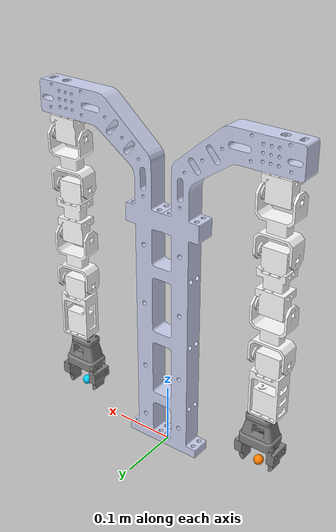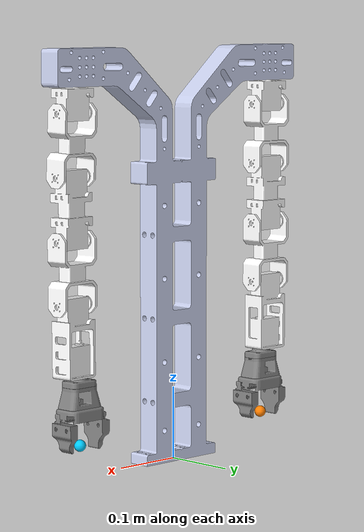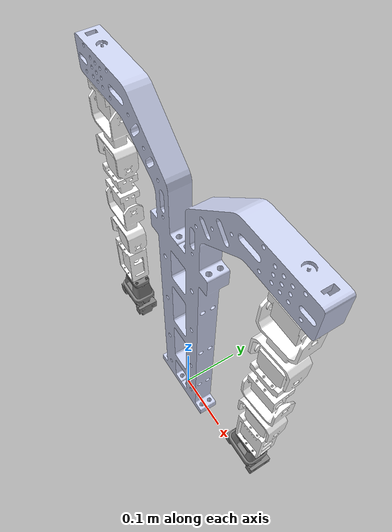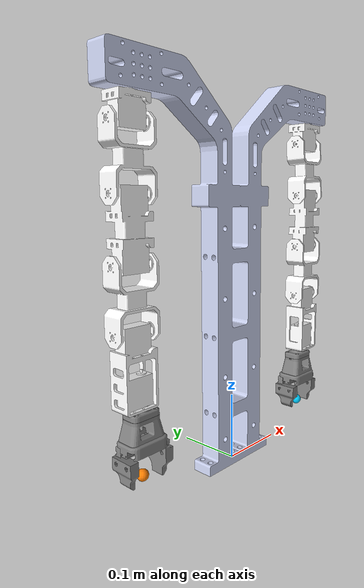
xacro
<?xml version="1.0"?>
<robot xmlns:xacro="http://www.ros.org/wiki/xacro" name="dexter_arm">
    <!-- Include the URDF from dexter_arm_description package -->
    <!-- MoveIt will load this to get the robot geometry -->
    <xacro:include filename="$(find dexter_arm_description)/urdf/dexter_arm.urdf.xacro" />
</robot>

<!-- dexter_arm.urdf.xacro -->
<robot xmlns:xacro="http://www.ros.org/wiki/xacro" name="dexter_arm">

    <!-- Pure robot geometry - NO ros2_control here -->
    <!-- ros2_control is added by overlay xacros (gazebo/hardware) -->

    <!-- Add dummy world link and fixed base_joint so base_link is not the URDF root -->
    <link name="world" />
    <joint name="base_joint" type="fixed">
        <parent link="world" />
        <child link="base_link" />
        <origin rpy="0 0 0" xyz="0 0 0" />
    </joint>

    <!-- Base Link -->
    <link name="base_link">
        <inertial>
            <origin xyz="1.11022302462516E-16 -1.31752248000438E-15 0.341229394008098" rpy="0 0 0" />
            <mass value="1.57034512332414" />
            <inertia ixx="0.014156986279529" ixy="-2.66546726272844E-17" ixz="8.0299293210262E-19"
                     iyy="0.0167394307342646" iyz="5.42683623685501E-17" izz="0.00265284502209648" />
        </inertial>
        <visual>
            <origin xyz="0 0 0" rpy="0 0 0" />
            <geometry>
                <mesh filename="package://dexter_arm_description/meshes/visual/base_link.STL" />
            </geometry>
            <material name="">
                <color rgba="0.792156862745098 0.819607843137255 0.933333333333333 1" />
            </material>
        </visual>
        <collision>
            <origin xyz="0 0 0" rpy="0 0 0" />
            <geometry>
                <mesh filename="package://dexter_arm_description/meshes/collision/base_link.STL" />
            </geometry>
        </collision>
    </link>

    <!-- LEFT ARM -->
    <!-- Link l1l -->
    <link name="l1l">
        <inertial>
            <origin xyz="-2.06768076424502E-05 2.03830008427275E-15 0.0236812970530658" rpy="0 0 0" />
            <mass value="0.0412610106656879" />
            <inertia ixx="6.45452263055135E-06" ixy="-6.35156631471509E-20" ixz="5.67173895654462E-10"
                     iyy="1.08529418395194E-05" iyz="1.55844839681327E-20" izz="8.35698735982534E-06" />
        </inertial>
        <visual>
            <origin xyz="0 0 0" rpy="0 0 0" />
            <geometry>
                <mesh filename="package://dexter_arm_description/meshes/visual/l1l.STL" />
            </geometry>
            <material name="">
                <color rgba="1 1 1 1" />
            </material>
        </visual>
        <collision>
            <origin xyz="0 0 0" rpy="0 0 0" />
            <geometry>
                <mesh filename="package://dexter_arm_description/meshes/collision/l1l.STL" />
            </geometry>
        </collision>
    </link>

    <joint name="j1l" type="revolute">
        <origin xyz="-0.185 0 0.4755" rpy="0 0 0" />
        <parent link="base_link" />
        <child link="l1l" />
        <axis xyz="0 0 -1" />
        <limit lower="0" upper="3.14" effort="343.0" velocity="5" />
    </joint>

    <!-- Link l2l -->
    <link name="l2l">
        <inertial>
            <origin xyz="0.0420000000000009 3.10255293678452E-14 -2.1094237467878E-15" rpy="0 0 0" />
            <mass value="0.0412639771770677" />
            <inertia ixx="2.03861872352237E-05" ixy="1.83850917637208E-20" ixz="1.29909905427445E-20"
                     iyy="2.30212674355657E-05" iyz="-5.99177000134609E-22" izz="8.54833447441493E-06" />
        </inertial>
        <visual>
            <origin xyz="0 0 0" rpy="0 0 0" />
            <geometry>
                <mesh filename="package://dexter_arm_description/meshes/visual/l2l.STL" />
            </geometry>
            <material name="">
                <color rgba="1 1 1 1" />
            </material>
        </visual>
        <collision>
            <origin xyz="0 0 0" rpy="0 0 0" />
            <geometry>
                <mesh filename="package://dexter_arm_description/meshes/collision/l2l.STL" />
            </geometry>
        </collision>
    </link>

    <joint name="j2l" type="revolute">
        <origin xyz="0 0 0.01" rpy="0 1.5707963267949 0" />
        <parent link="l1l" />
        <child link="l2l" />
        <axis xyz="0 0 1" />
        <limit lower="-1.57" upper="1.57" effort="343.0" velocity="5" />
    </joint>

    <!-- Link l3l -->
    <link name="l3l">
        <inertial>
            <origin xyz="0.0425000000000011 -3.91231348532972E-10 -2.05391259555654E-15" rpy="0 0 0" />
            <mass value="0.089584582698146" />
            <inertia ixx="1.79494942674491E-05" ixy="-6.24250401827857E-21" ixz="-1.13434779133657E-09"
                     iyy="2.28721177257845E-05" iyz="-4.51664802349514E-21" izz="1.35465501240485E-05" />
        </inertial>
        <visual>
            <origin xyz="0 0 0" rpy="0 0 0" />
            <geometry>
                <mesh filename="package://dexter_arm_description/meshes/visual/l3l.STL" />
            </geometry>
            <material name="">
                <color rgba="1 1 1 1" />
            </material>
        </visual>
        <collision>
            <origin xyz="0 0 0" rpy="0 0 0" />
            <geometry>
                <mesh filename="package://dexter_arm_description/meshes/collision/l3l.STL" />
            </geometry>
        </collision>
    </link>

    <joint name="j3l" type="revolute">
        <origin xyz="0.0839999999999997 0 0" rpy="0 0 0" />
        <parent link="l2l" />
        <child link="l3l" />
        <axis xyz="0 0 1" />
        <limit lower="-1.57" upper="1.57" effort="343.0" velocity="5" />
    </joint>

    <!-- Link l4l -->
    <link name="l4l">
        <inertial>
            <origin xyz="0.042000000005591 -9.7518096834389E-07 -1.55431223447522E-15" rpy="0 0 0" />
            <mass value="0.041263977177068" />
            <inertia ixx="2.03861872352239E-05" ixy="-2.09421927761261E-21" ixz="-3.48729676766912E-20"
                     iyy="2.3021267435566E-05" iyz="-4.08634235879589E-21" izz="8.54833447441504E-06" />
        </inertial>
        <visual>
            <origin xyz="0 0 0" rpy="0 0 0" />
            <geometry>
                <mesh filename="package://dexter_arm_description/meshes/visual/l4l.STL" />
            </geometry>
            <material name="">
                <color rgba="1 1 1 1" />
            </material>
        </visual>
        <collision>
            <origin xyz="0 0 0" rpy="0 0 0" />
            <geometry>
                <mesh filename="package://dexter_arm_description/meshes/collision/l4l.STL" />
            </geometry>
        </collision>
    </link>

    <joint name="j4l" type="revolute">
        <origin xyz="0.0849999999944108 0 0" rpy="0 0 0" />
        <parent link="l3l" />
        <child link="l4l" />
        <axis xyz="0 0 1" />
        <limit lower="-1.57" upper="1.57" effort="147.0" velocity="5" />
    </joint>

    <!-- Link l5l -->
    <link name="l5l">
        <inertial>
            <origin xyz="0.04514989228191 -0.00246541434401295 0.000519380260867508" rpy="0 0 0" />
            <mass value="0.0877350527785506" />
            <inertia ixx="2.15592269641528E-05" ixy="1.08634480270297E-12" ixz="6.61837513500229E-07"
                     iyy="4.21271739710682E-05" iyz="-2.81945782664923E-12" izz="2.9808063539004E-05" />
        </inertial>
        <visual>
            <origin xyz="0 0 0" rpy="0 0 0" />
            <geometry>
                <mesh filename="package://dexter_arm_description/meshes/visual/l5l.STL" />
            </geometry>
            <material name="">
                <color rgba="1 1 1 1" />
            </material>
        </visual>
        <collision>
            <origin xyz="0 0 0" rpy="0 0 0" />
            <geometry>
                <mesh filename="package://dexter_arm_description/meshes/collision/l5l.STL" />
            </geometry>
        </collision>
    </link>

    <joint name="j5l" type="revolute">
        <origin xyz="0.083965824229058 0.0023959051595066 0" rpy="0 0 0" />
        <parent link="l4l" />
        <child link="l5l" />
        <axis xyz="0 0 1" />
        <limit lower="-1.57" upper="1.57" effort="147.0" velocity="5" />
    </joint>

    <!-- LEFT GRIPPER BASE - Using new gripper mesh -->
    <link name="l6l">
        <inertial>
            <origin xyz="0 0 0.02" rpy="0 0 0" />
            <mass value="0.05" />
            <inertia ixx="0.00001" ixy="0" ixz="0" iyy="0.00001" iyz="0" izz="0.00001" />
        </inertial>
        <visual>
            <origin xyz="0 0 0" rpy="0 0 0" />
            <geometry>
                <mesh filename="package://dexter_arm_description/meshes/base.stl" scale="0.001 0.001 0.001"/>
            </geometry>
            <material name="">
                <color rgba="0.5 0.5 0.5 1" />
            </material>
        </visual>
        <collision>
            <origin xyz="0 0 0" rpy="0 0 0" />
            <geometry>
                <mesh filename="package://dexter_arm_description/meshes/base.stl" scale="0.001 0.001 0.001"/>
            </geometry>
        </collision>
    </link>

    <joint name="j6l" type="revolute">
        <origin xyz="0.110 -0.002 0.010" rpy="3.14159 1.57 0" />
        <parent link="l5l" />
        <child link="l6l" />
        <axis xyz="0 0 1" />
        <limit lower="-1.5708" upper="1.5708" effort="0.5" velocity="1.0" />
    </joint>

    <!-- LEFT GRIPPER - Base1 Layer (fixed below base) -->
    <link name="l6l_base1">
        <inertial>
            <origin xyz="0 0 0.01" rpy="0 0 0" />
            <mass value="0.03" />
            <inertia ixx="0.00001" ixy="0" ixz="0" iyy="0.00001" iyz="0" izz="0.00001" />
        </inertial>
        <visual>
            <origin xyz="0 0 0" rpy="0 0 0" />
            <geometry>
                <mesh filename="package://dexter_arm_description/meshes/base1.stl" scale="0.001 0.001 0.001"/>
            </geometry>
            <material name="">
                <color rgba="0.5 0.5 0.5 1" />
            </material>
        </visual>
        <collision>
            <origin xyz="0 0 0" rpy="0 0 0" />
            <geometry>
                <mesh filename="package://dexter_arm_description/meshes/base1.stl" scale="0.001 0.001 0.001"/>
            </geometry>
        </collision>
    </link>

    <joint name="j6l_base1_fixed" type="fixed">
        <origin xyz="-0.021 0.015 0.004" rpy="3.142 0 0" />
        <parent link="l6l" />
        <child link="l6l_base1" />
    </joint>

    <!-- LEFT GRIPPER - Rail Layer (fixed to base1) -->
    <link name="l6l_rail">
        <inertial>
            <origin xyz="0 0 0.01" rpy="0 0 0" />
            <mass value="0.02" />
            <inertia ixx="0.00001" ixy="0" ixz="0" iyy="0.00001" iyz="0" izz="0.00001" />
        </inertial>
        <visual>
            <origin xyz="0 0 0" rpy="0 0 0" />
            <geometry>
                <mesh filename="package://dexter_arm_description/meshes/rail.stl" scale="0.001 0.001 0.001"/>
            </geometry>
            <material name="">
                <color rgba="0.5 0.5 0.5 1" />
            </material>
        </visual>
        <collision>
            <origin xyz="0 0 0" rpy="0 0 0" />
            <geometry>
                <mesh filename="package://dexter_arm_description/meshes/rail.stl" scale="0.001 0.001 0.001"/>
            </geometry>
        </collision>
    </link>

    <joint name="j6l_rail_fixed" type="fixed">
        <origin xyz="-0.009 0.034 0.036" rpy="1.57 0 0" />
        <parent link="l6l_base1" />
        <child link="l6l_rail" />
    </joint>

    <!-- LEFT GRIPPER - Finger 1 Slider -->
    <link name="l6l_finger_slider">
        <inertial>
            <mass value="0.001" />
            <inertia ixx="0.000001" ixy="0" ixz="0" iyy="0.000001" iyz="0" izz="0.000001" />
        </inertial>
    </link>

    <joint name="j7l1" type="prismatic">
        <origin xyz="0.000 0.022 0.021" rpy="0 -1.572 0" />
        <parent link="l6l_rail" />
        <child link="l6l_finger_slider" />
        <axis xyz="0 0 1" />
        <limit lower="-0.022" upper="0.0" effort="1.0" velocity="0.1" />
    </joint>

    <!-- LEFT GRIPPER - Finger (actual mesh) -->
    <link name="l6l_finger">
        <inertial>
            <origin xyz="0 0 0.015" rpy="0 0 0" />
            <mass value="0.01" />
            <inertia ixx="0.000001" ixy="0" ixz="0" iyy="0.000001" iyz="0" izz="0.000001" />
        </inertial>
        <visual>
            <origin xyz="0 0 0" rpy="0 0 0" />
            <geometry>
                <mesh filename="package://dexter_arm_description/meshes/finger.stl" scale="0.001 0.001 0.001"/>
            </geometry>
            <material name="">
                <color rgba="0.5 0.5 0.5 1" />
            </material>
        </visual>
        <collision>
            <origin xyz="0 0 0" rpy="0 0 0" />
            <geometry>
                <mesh filename="package://dexter_arm_description/meshes/finger.stl" scale="0.001 0.001 0.001"/>
            </geometry>
        </collision>
    </link>

    <joint name="j6l_finger_fixed" type="fixed">
        <origin xyz="0 0 0" rpy="0 0 0" />
        <parent link="l6l_finger_slider" />
        <child link="l6l_finger" />
    </joint>

    <!-- LEFT GRIPPER - Second Finger with Mimic Slider -->
    <link name="l6l_finger2_slider">
        <inertial>
            <mass value="0.001" />
            <inertia ixx="0.000001" ixy="0" ixz="0" iyy="0.000001" iyz="0" izz="0.000001" />
        </inertial>
    </link>

    <joint name="j7l2" type="prismatic">
        <origin xyz="0.060 0.022 0.021" rpy="0 1.572 0" />
        <parent link="l6l_rail" />
        <child link="l6l_finger2_slider" />
        <axis xyz="0 0 1" />
        <limit lower="-0.022" upper="0.0" effort="1.0" velocity="0.1" />
    </joint>

    <!-- LEFT GRIPPER - Second Finger (actual mesh) -->
    <link name="l6l_finger2">
        <inertial>
            <origin xyz="0 0 0.015" rpy="0 0 0" />
            <mass value="0.01" />
            <inertia ixx="0.000001" ixy="0" ixz="0" iyy="0.000001" iyz="0" izz="0.000001" />
        </inertial>
        <visual>
            <origin xyz="0 0 0" rpy="0 0 0" />
            <geometry>
                <mesh filename="package://dexter_arm_description/meshes/finger.stl" scale="0.001 0.001 0.001"/>
            </geometry>
            <material name="">
                <color rgba="0.5 0.5 0.5 1" />
            </material>
        </visual>
        <collision>
            <origin xyz="0 0 0" rpy="0 0 0" />
            <geometry>
                <mesh filename="package://dexter_arm_description/meshes/finger.stl" scale="0.001 0.001 0.001"/>
            </geometry>
        </collision>
    </link>

    <joint name="j6l_finger2_fixed" type="fixed">
        <origin xyz="0 0 0" rpy="0 0 0" />
        <parent link="l6l_finger2_slider" />
        <child link="l6l_finger2" />
    </joint>

    <!-- LEFT ARM - Tool Center Point (TCP) -->
    <link name="tool0_left">
        <inertial>
            <origin xyz="0 0 0" rpy="0 0 0" />
            <mass value="0.001" />
            <inertia ixx="0.000001" ixy="0" ixz="0" iyy="0.000001" iyz="0" izz="0.000001" />
        </inertial>
        <visual>
            <origin xyz="0 0 0" rpy="0 0 0" />
            <geometry>
                <sphere radius="0.008" />
            </geometry>
            <material name="tcp_orange">
                <color rgba="1.0 0.5 0.0 1.0" />
            </material>
        </visual>
    </link>

    <joint name="tool0_left_fixed_joint" type="fixed">
        <origin xyz="0 0 -0.08" rpy="0 0 0" />
        <parent link="l6l" />
        <child link="tool0_left" />
    </joint>

    <!-- RIGHT ARM -->
    <!-- Link l1r -->
    <link name="l1r">
        <inertial>
            <origin xyz="2.06768076422351E-05 2.42861286636753E-17 -0.0236812970530664" rpy="0 0 0" />
            <mass value="0.0412610106656879" />
            <inertia ixx="6.45452263055137E-06" ixy="1.58739512138535E-22" ixz="5.67173895648283E-10"
                     iyy="1.08529418395194E-05" iyz="2.01570916178023E-20" izz="8.35698735982533E-06" />
        </inertial>
        <visual>
            <origin xyz="0 0 0" rpy="0 0 0" />
            <geometry>
                <mesh filename="package://dexter_arm_description/meshes/visual/l1r.STL" />
            </geometry>
            <material name="">
                <color rgba="1 1 1 1" />
            </material>
        </visual>
        <collision>
            <origin xyz="0 0 0" rpy="0 0 0" />
            <geometry>
                <mesh filename="package://dexter_arm_description/meshes/collision/l1r.STL" />
            </geometry>
        </collision>
    </link>

    <joint name="j1r" type="revolute">
        <origin xyz="0.185 0 0.4755" rpy="3.14159265358979 0 0" />
        <parent link="base_link" />
        <child link="l1r" />
        <axis xyz="0 0 1" />
        <limit lower="0" upper="3.14" effort="343.0" velocity="5" />
    </joint>

    <!-- Link l2r -->
    <link name="l2r">
        <inertial>
            <origin xyz="0.0419634783926228 0.00174598253548033 -0.000134261601576029" rpy="0 0 0" />
            <mass value="0.0412639771770678" />
            <inertia ixx="2.03907679743811E-05" ixy="-1.0944769820727E-07" ixz="8.41624870313865E-09"
                     iyy="2.29316351108135E-05" iyz="-1.10603911559014E-06" izz="8.63338606000998E-06" />
        </inertial>
        <visual>
            <origin xyz="0 0 0" rpy="0 0 0" />
            <geometry>
                <mesh filename="package://dexter_arm_description/meshes/visual/l2r.STL" />
            </geometry>
            <material name="">
                <color rgba="1 1 1 1" />
            </material>
        </visual>
        <collision>
            <origin xyz="0 0 0" rpy="0 0 0" />
            <geometry>
                <mesh filename="package://dexter_arm_description/meshes/collision/l2r.STL" />
            </geometry>
        </collision>
    </link>

    <joint name="j2r" type="revolute">
        <origin xyz="0 0 -0.01" rpy="0 -1.5707963267949 0" />
        <parent link="l1r" />
        <child link="l2r" />
        <axis xyz="0 0 1" />
        <limit lower="-1.57" upper="1.57" effort="343.0" velocity="5" />
    </joint>

    <!-- Link l3r -->
    <link name="l3r">
        <inertial>
            <origin xyz="0.0423825306568636 0.00349075846009133 -0.000268452021535304" rpy="0 0 0" />
            <mass value="0.0895845826981461" />
            <inertia ixx="1.79494942674491E-05" ixy="-8.69786470348686E-11" ixz="-1.13100823456928E-09"
                     iyy="2.28172890053359E-05" iyz="-7.12953540193635E-07" izz="1.36013788444972E-05" />
        </inertial>
        <visual>
            <origin xyz="0 0 0" rpy="0 0 0" />
            <geometry>
                <mesh filename="package://dexter_arm_description/meshes/visual/l3r.STL" />
            </geometry>
            <material name="">
                <color rgba="1 1 1 1" />
            </material>
        </visual>
        <collision>
            <origin xyz="0 0 0" rpy="0 0 0" />
            <geometry>
                <mesh filename="package://dexter_arm_description/meshes/collision/l3r.STL" />
            </geometry>
        </collision>
    </link>

    <joint name="j3r" type="revolute">
        <origin xyz="0.0839999999999999 0 0" rpy="1.23048953327578E-05 -0.00097269686955413 -0.012649615042804" />
        <parent link="l2r" />
        <child link="l3r" />
        <axis xyz="0.000972696716171088 1.23048895120007E-05 0.999999526854732" />
        <limit lower="-1.57" upper="1.57" effort="343.0" velocity="5" />
    </joint>

    <!-- Link l4r -->
    <link name="l4r">
        <inertial>
            <origin xyz="0.0418892012683609 0.00253473472586697 -0.000194930320374417" rpy="0 0 0" />
            <mass value="0.0412639771770679" />
            <inertia ixx="2.03862085728145E-05" ixy="-7.47631149425635E-09" ixz="5.74955547272901E-10"
                     iyy="2.29361540950671E-05" iyz="-1.10647566127816E-06" izz="8.63342647732305E-06" />
        </inertial>
        <visual>
            <origin xyz="0 0 0" rpy="0 0 0" />
            <geometry>
                <mesh filename="package://dexter_arm_description/meshes/visual/l4r.STL" />
            </geometry>
            <material name="">
                <color rgba="1 1 1 1" />
            </material>
        </visual>
        <collision>
            <origin xyz="0 0 0" rpy="0 0 0" />
            <geometry>
                <mesh filename="package://dexter_arm_description/meshes/collision/l4r.STL" />
            </geometry>
        </collision>
    </link>

    <joint name="j4r" type="revolute">
        <origin xyz="0.0849931593404333 0.00107518760394861 -8.26858361745036E-05" rpy="0 0 0" />
        <parent link="l3r" />
        <child link="l4r" />
        <axis xyz="0.000972696716170201 1.23048895400181E-05 0.999999526854732" />
        <limit lower="-1.57" upper="1.57" effort="147.0" velocity="5" />
    </joint>

    <!-- Link l5r -->
    <link name="l5r">
        <inertial>
            <origin xyz="0.0450157419489307 0.00156312182677027 0.000400707468873628" rpy="0 0 0" />
            <mass value="0.0877350517033452" />
            <inertia ixx="2.15592267291585E-05" ixy="5.07473450979785E-08" ixz="6.59889552919724E-07"
                     iyy="4.2054747689702E-05" iyz="-9.41789114948995E-07" izz="2.98804874954609E-05" />
        </inertial>
        <visual>
            <origin xyz="0 0 0" rpy="0 0 0" />
            <geometry>
                <mesh filename="package://dexter_arm_description/meshes/visual/l5r.STL" />
            </geometry>
            <material name="">
                <color rgba="1 1 1 1" />
            </material>
        </visual>
        <collision>
            <origin xyz="0 0 0" rpy="0 0 0" />
            <geometry>
                <mesh filename="package://dexter_arm_description/meshes/collision/l5r.STL" />
            </geometry>
        </collision>
    </link>

    <joint name="j5r" type="revolute">
        <origin xyz="0.0839932398190739 0.00106253831537445 -8.1713061631225E-05" rpy="0 0.000203415098013994 0.00264506784365567" />
        <parent link="l4r" />
        <child link="l5r" />
        <axis xyz="0.000769310840231528 0 0.999999704050751" />
        <limit lower="-1.57" upper="1.57" effort="147.0" velocity="5" />
    </joint>

    <!-- RIGHT GRIPPER BASE - Using new gripper mesh -->
    <link name="l6r">
        <inertial>
            <origin xyz="0 0 0.02" rpy="0 0 0" />
            <mass value="0.05" />
            <inertia ixx="0.00001" ixy="0" ixz="0" iyy="0.00001" iyz="0" izz="0.00001" />
        </inertial>
        <visual>
            <origin xyz="0 0 0" rpy="0 0 0" />
            <geometry>
                <mesh filename="package://dexter_arm_description/meshes/base.stl" scale="0.001 0.001 0.001"/>
            </geometry>
            <material name="">
                <color rgba="0.5 0.5 0.5 1" />
            </material>
        </visual>
        <collision>
            <origin xyz="0 0 0" rpy="0 0 0" />
            <geometry>
                <mesh filename="package://dexter_arm_description/meshes/base.stl" scale="0.001 0.001 0.001"/>
            </geometry>
        </collision>
    </link>

    <joint name="j6r" type="revolute">
        <origin xyz="0.110 0.002 0.010" rpy="3.14159 1.57 0" />
        <parent link="l5r" />
        <child link="l6r" />
        <axis xyz="0 0 1" />
        <limit lower="-1.5708" upper="1.5708" effort="0.5" velocity="1.0" />
    </joint>

    <!-- RIGHT GRIPPER - Base1 Layer (fixed below base) -->
    <link name="l6r_base1">
        <inertial>
            <origin xyz="0 0 0.01" rpy="0 0 0" />
            <mass value="0.03" />
            <inertia ixx="0.00001" ixy="0" ixz="0" iyy="0.00001" iyz="0" izz="0.00001" />
        </inertial>
        <visual>
            <origin xyz="0 0 0" rpy="0 0 0" />
            <geometry>
                <mesh filename="package://dexter_arm_description/meshes/base1.stl" scale="0.001 0.001 0.001"/>
            </geometry>
            <material name="">
                <color rgba="0.5 0.5 0.5 1" />
            </material>
        </visual>
        <collision>
            <origin xyz="0 0 0" rpy="0 0 0" />
            <geometry>
                <mesh filename="package://dexter_arm_description/meshes/base1.stl" scale="0.001 0.001 0.001"/>
            </geometry>
        </collision>
    </link>

    <joint name="j6r_base1_fixed" type="fixed">
        <origin xyz="-0.021 0.015 0.004" rpy="3.142 0 0" />
        <parent link="l6r" />
        <child link="l6r_base1" />
    </joint>

    <!-- RIGHT GRIPPER - Rail Layer (fixed to base1) -->
    <link name="l6r_rail">
        <inertial>
            <origin xyz="0 0 0.01" rpy="0 0 0" />
            <mass value="0.02" />
            <inertia ixx="0.00001" ixy="0" ixz="0" iyy="0.00001" iyz="0" izz="0.00001" />
        </inertial>
        <visual>
            <origin xyz="0 0 0" rpy="0 0 0" />
            <geometry>
                <mesh filename="package://dexter_arm_description/meshes/rail.stl" scale="0.001 0.001 0.001"/>
            </geometry>
            <material name="">
                <color rgba="0.5 0.5 0.5 1" />
            </material>
        </visual>
        <collision>
            <origin xyz="0 0 0" rpy="0 0 0" />
            <geometry>
                <mesh filename="package://dexter_arm_description/meshes/rail.stl" scale="0.001 0.001 0.001"/>
            </geometry>
        </collision>
    </link>

    <joint name="j6r_rail_fixed" type="fixed">
        <origin xyz="-0.009 0.034 0.036" rpy="1.57 0 0" />
        <parent link="l6r_base1" />
        <child link="l6r_rail" />
    </joint>

    <!-- RIGHT GRIPPER - Fingers -->

    <!-- RIGHT GRIPPER - Finger 1 Slider -->
    <link name="l6r_finger_slider">
        <inertial>
            <mass value="0.05" />
            <inertia ixx="0.0001" ixy="0" ixz="0" iyy="0.0001" iyz="0" izz="0.0001" />
        </inertial>
    </link>

    <joint name="j7r1" type="prismatic">
        <origin xyz="0.000 0.022 0.021" rpy="0 -1.572 0" />
        <parent link="l6r_rail" />
        <child link="l6r_finger_slider" />
        <axis xyz="0 0 1" />
        <limit lower="-0.022" upper="0.0" effort="10.0" velocity="0.1" />
    </joint>

    <!-- RIGHT GRIPPER - Finger (actual mesh) -->
    <link name="l6r_finger">
        <inertial>
            <origin xyz="0 0 0.015" rpy="0 0 0" />
            <mass value="0.01" />
            <inertia ixx="0.000001" ixy="0" ixz="0" iyy="0.000001" iyz="0" izz="0.000001" />
        </inertial>
        <visual>
            <origin xyz="0 0 0" rpy="0 0 0" />
            <geometry>
                <mesh filename="package://dexter_arm_description/meshes/finger.stl" scale="0.001 0.001 0.001"/>
            </geometry>
            <material name="">
                <color rgba="0.5 0.5 0.5 1" />
            </material>
        </visual>
        <collision>
            <origin xyz="0 0 0" rpy="0 0 0" />
            <geometry>
                <mesh filename="package://dexter_arm_description/meshes/finger.stl" scale="0.001 0.001 0.001"/>
            </geometry>
        </collision>
    </link>

    <joint name="j6r_finger_fixed" type="fixed">
        <origin xyz="0 0 0" rpy="0 0 0" />
        <parent link="l6r_finger_slider" />
        <child link="l6r_finger" />
    </joint>

    <!-- RIGHT GRIPPER - Second Finger with Mimic Slider -->
    <link name="l6r_finger2_slider">
        <inertial>
            <mass value="0.05" />
            <inertia ixx="0.0001" ixy="0" ixz="0" iyy="0.0001" iyz="0" izz="0.0001" />
        </inertial>
    </link>

    <joint name="j7r2" type="prismatic">
        <origin xyz="0.060 0.022 0.021" rpy="0 -1.572 0" />
        <parent link="l6r_rail" />
        <child link="l6r_finger2_slider" />
        <axis xyz="0 0 1" />
        <limit lower="-0.022" upper="0.022" effort="10.0" velocity="0.1" />
    </joint>

    <!-- RIGHT GRIPPER - Second Finger (actual mesh) -->
    <link name="l6r_finger2">
        <inertial>
            <origin xyz="0 0 0.015" rpy="0 0 0" />
            <mass value="0.01" />
            <inertia ixx="0.000001" ixy="0" ixz="0" iyy="0.000001" iyz="0" izz="0.000001" />
        </inertial>
        <visual>
            <origin xyz="0 0 0" rpy="0 3.14159 0" />
            <geometry>
                <mesh filename="package://dexter_arm_description/meshes/finger.stl" scale="0.001 0.001 0.001"/>
            </geometry>
            <material name="">
                <color rgba="0.5 0.5 0.5 1" />
            </material>
        </visual>
    </link>

    <joint name="j6r_finger2_fixed" type="fixed">
        <origin xyz="0 0 0" rpy="0 0 0" />
        <parent link="l6r_finger2_slider" />
        <child link="l6r_finger2" />
    </joint>

    <!-- RIGHT ARM - Tool Center Point (TCP) -->
    <link name="tool0_right">
        <inertial>
            <origin xyz="0 0 0" rpy="0 0 0" />
            <mass value="0.001" />
            <inertia ixx="0.000001" ixy="0" ixz="0" iyy="0.000001" iyz="0" izz="0.000001" />
        </inertial>
        <visual>
            <origin xyz="0 0 0" rpy="0 0 0" />
            <geometry>
                <sphere radius="0.008" />
            </geometry>
            <material name="tcp_cyan">
                <color rgba="0.0 0.8 1.0 1.0" />
            </material>
        </visual>
    </link>

    <joint name="tool0_right_fixed_joint" type="fixed">
        <origin xyz="0 0 -0.08" rpy="0 0 0" />
        <parent link="l6r" />
        <child link="tool0_right" />
    </joint>

</robot>
